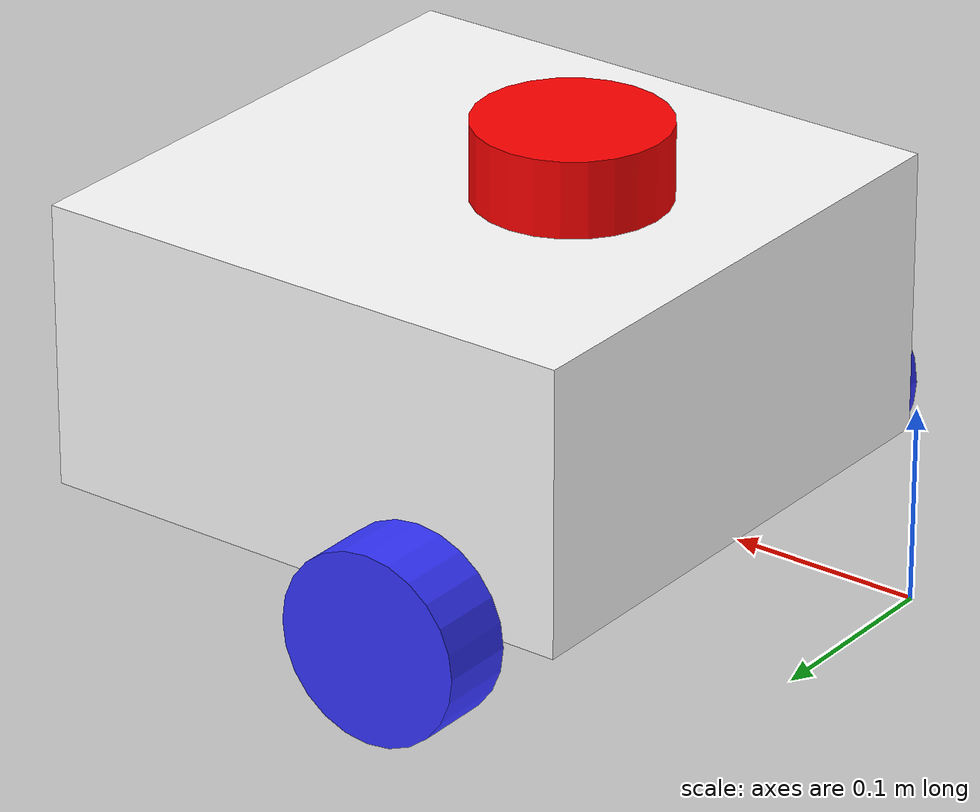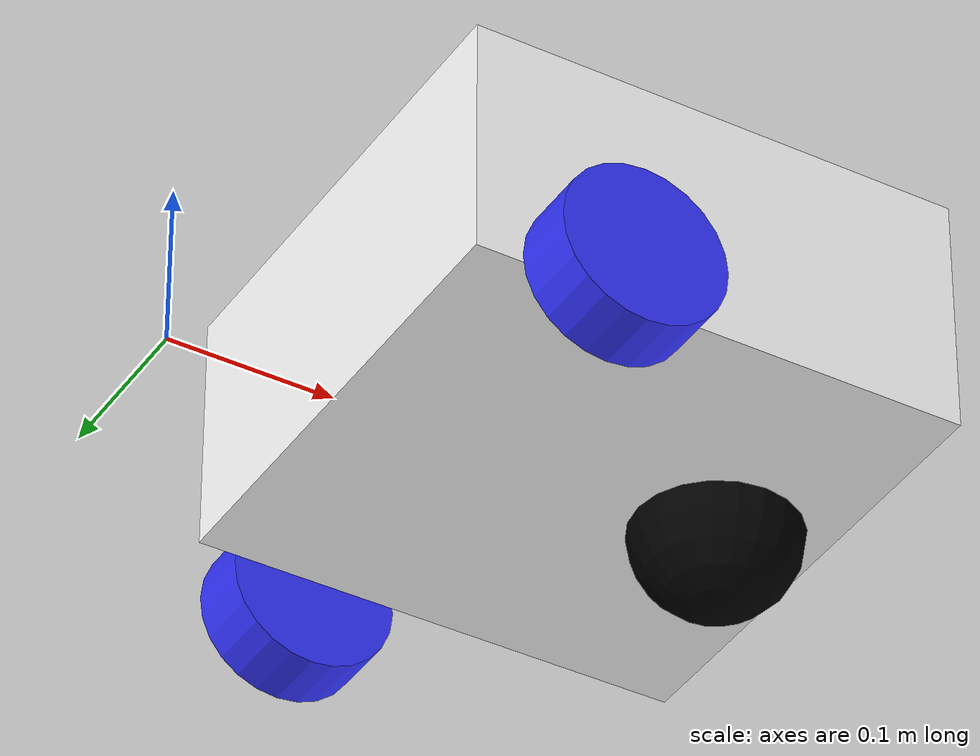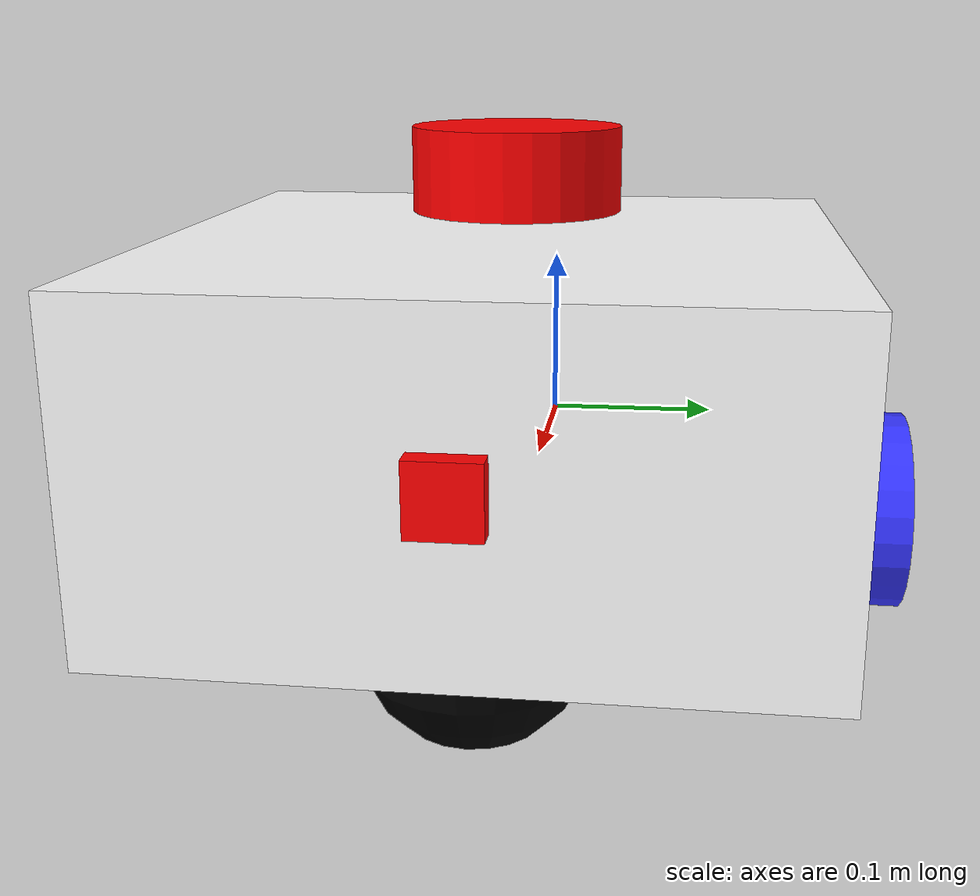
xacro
<?xml version="1.0"?>
<robot xmlns:xacro="http://www.ros.org/wiki/xacro"  name="robot">

    <!-- Example link -->
    <xacro:include filename="robot_core.xacro"/>
    <xacro:include filename="gazebo_control.xacro"/>
    <xacro:include filename="lidar.xacro"/>
    <xacro:include filename="camera.xacro"/>

</robot>

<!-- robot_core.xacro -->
<robot xmlns:xacro="http://www.ros.org/wiki/xacro">

    <xacro:include filename="inertial_macros.xacro"/>

    <material name="white">
        <color rgba="1 1 1 1"/>
    </material>

    <material name="orange">
        <color rgba="1 0.3 0.1 1.0"/>
    </material>

    <material name="blue">
        <color rgba="0.2 0.2 1 1.0"/>
    </material>

    <material name="black">
        <color rgba="0 0 0 1"/>
    </material>

    <material name="red">
        <color rgba="1.0 0.0 0.0 1.0"/>
    </material>

    <!-- BASE LINK -->

    <link name="base_link">
    </link>

    <!-- BASE FOOTPRINT LINK -->

    <link name="base_footprint">
    </link>

    <!-- CHASSIS LINK -->

    <link name="chassis_link">
        <visual>
            <geometry>
                <box size="0.3 0.3 0.15"/>
            </geometry>
            <origin xyz="0.15 0.0 0.075" rpy="0.0 0.0 0.0"/>
            <material name="white"/>
        </visual>
        <collision>
            <geometry>
                <box size="0.3 0.3 0.15"/>
            </geometry>
            <origin xyz="0.15 0.0 0.075" rpy="0.0 0.0 0.0"/>
        </collision>
        <xacro:inertial_box mass="0.5" x="0.3" y="0.3" z="0.15" >
            <origin xyz="0.15 0.0 0.075" rpy="0.0 0.0 0.0"/>
        </xacro:inertial_box>
    </link>

    <gazebo reference = "chassis_link">
        <material>Gazebo/White</material>
    </gazebo>

    <!-- LEFT WHEEL LINK -->

    <link name="left_wheel_link">
        <visual>
            <geometry>
                <cylinder radius="0.05" length="0.04"/>
            </geometry>
            <origin xyz="0.0 0.0 0.0" rpy="0.0 0.0 0.0"/>
            <material name="blue"/>
        </visual>
        <collision>
            <geometry>
                <cylinder radius="0.05" length="0.04"/>
            </geometry>
            <origin xyz="0.0 0.0 0.0" rpy="0.0 0.0 0.0"/>
        </collision>
        <xacro:inertial_cylinder mass="0.1" length="0.04" radius="0.05" >
            <origin xyz="0.0 0.0 0.0" rpy="0.0 0.0 0.0"/>
        </xacro:inertial_cylinder>
    </link>

    <gazebo reference = "left_wheel_link">
        <material>Gazebo/Blue</material>
    </gazebo>

    <!-- RIGHT WHEEL LINK -->

    <link name="right_wheel_link">
        <visual>
            <geometry>
                <cylinder radius="0.05" length="0.04"/>
            </geometry>
            <origin xyz="0.0 0.0 0.0" rpy="0.0 0.0 0.0"/>
            <material name="blue"/>
        </visual>
        <collision>
            <geometry>
                <cylinder radius="0.05" length="0.04"/>
            </geometry>
            <origin xyz="0.0 0.0 0.0" rpy="0.0 0.0 0.0"/>
        </collision>
        <xacro:inertial_cylinder mass="0.1" length="0.04" radius="0.05" >
            <origin xyz="0.0 0.0 0.0" rpy="0.0 0.0 0.0"/>
        </xacro:inertial_cylinder>
    </link>

    <gazebo reference = "right_wheel_link">
        <material>Gazebo/Blue</material>
    </gazebo>

    <!-- CASTOR WHEEL LINK -->

    <link name="castor_wheel_link">
        <visual>
            <geometry>
                <sphere radius="0.05"/>
            </geometry>
            <origin xyz="0.1 0.0 0.0" rpy="0.0 0.0 0.0"/>
            <material name = "black" />
        </visual>
        <collision>
            <geometry>
                <sphere radius="0.05"/>
            </geometry>
            <origin xyz="0.1 0.0 0.0" rpy="0.0 0.0 0.0"/>
        </collision>
        <xacro:inertial_sphere mass="0.1" radius="0.05" >
            <origin xyz="0.0 0.0 0.0" rpy="0.0 0.0 0.0"/>
        </xacro:inertial_sphere>
    </link>

    <gazebo reference = "castor_wheel_link">
        <material>Gazebo/Black</material>
        <mu1 value="0.001" />
        <mu2 value="0.001" />
    </gazebo>

    <!-- BASE FOOTPRINT JOINT -->

    <joint name="base_footprint_joint" type="fixed">
        <parent link="base_link"/>
        <child link="base_footprint"/>
        <origin xyz="0.0 0.0 0.0" rpy="0.0 0.0 0.0"/>
    </joint>

    <!-- BASE CHASSIS JOINT -->

    <joint name="base_chassis_joint" type="fixed">
        <parent link="base_link"/>
        <child link="chassis_link"/>
        <origin xyz="0.1 0.0 0.0" rpy="0.0 0.0 0.0"/>
    </joint>

    <!-- LEFT WHEEL JOINT -->

    <joint name="left_wheel_joint" type="continuous">
        <parent link="chassis_link"/>
        <child link="left_wheel_link"/>
        <origin xyz="0.075 0.175 0" rpy="-1.57 0 0"/>
        <axis xyz="0 0 1"/>
    </joint>

    <!-- RIGHT WHEEL JOINT -->

    <joint name="right_wheel_joint" type="continuous">
        <parent link="chassis_link"/>
        <child link="right_wheel_link"/>
        <origin xyz="0.075 -0.175 0" rpy="-1.57 0 0"/>
        <axis xyz="0 0 1"/>
    </joint>

    <!-- CASTOR WHEEL JOINT -->

    <joint name="castor_wheel_base_joint" type="fixed">
        <parent link="base_link"/>
        <child link="castor_wheel_link"/>
        <origin xyz="0.24 0.0 0.0" rpy="0.0 0.0 0.0"/>
    </joint>

</robot>

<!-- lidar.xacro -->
<robot xmlns:xacro="http://www.ros.org/wiki/xacro" >

    <joint name="laser_joint" type="fixed">
        <parent link="chassis_link"/>
        <child link="laser_frame"/>
        <origin xyz="0.1 0 0.175" rpy="0 0 0"/>
    </joint>

    <link name="laser_frame">
        <visual>
            <geometry>
                <cylinder radius="0.05" length="0.04"/>
            </geometry>
            <material name="red"/>
        </visual>
        <collision>
            <geometry>
                <cylinder radius="0.05" length="0.04"/>
            </geometry>
        </collision>
        <xacro:inertial_cylinder mass="0.1" length="0.04" radius="0.05">
            <origin xyz="0 0 0" rpy="0 0 0"/>
        </xacro:inertial_cylinder>
    </link>

    <gazebo reference="laser_frame">
        <material>Gazebo/Red</material>

        <sensor name="laser" type="ray">
            <pose> 0 0 0 0 0 0 </pose>
            <visualize>true</visualize>
            <update_rate>10</update_rate>
            <ray>
                <scan>
                    <horizontal>
                        <samples>360</samples>
                        <min_angle>-3.14</min_angle>
                        <max_angle>3.14</max_angle>
                    </horizontal>
                </scan>
                <range>
                    <min>0.3</min>
                    <max>12</max>
                </range>
            </ray>
            <plugin name="laser_controller" filename="libgazebo_ros_ray_sensor.so">
                <ros>
                    <argument>~/out:=scan</argument>
                </ros>
                <output_type>sensor_msgs/LaserScan</output_type>
                <frame_name>laser_frame</frame_name>
            </plugin>
        </sensor>
    </gazebo>

</robot>

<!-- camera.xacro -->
<robot xmlns:xacro="http://www.ros.org/wiki/xacro" >

    <link name="camera_link">
        <visual>
            <geometry>
                <box size="0.01 0.03 0.03"/>
            </geometry>
            <material name="red"/>
        </visual>
    </link>

    <link name="camera_link_optical">
    </link>

    <joint name="camera_joint" type="fixed">
        <parent link="chassis_link"/>
        <child link="camera_link"/>
        <origin xyz="0.305 0 0.08" rpy="0 0 0"/>
    </joint>

    <joint name="camera__optical_joint" type="fixed">
        <parent link="camera_link"/>
        <child link="camera_link_optical"/>
        <origin xyz="0 0 0" rpy="${-pi/2} 0 ${-pi/2}"/>
    </joint>

    <gazebo reference="camera_link">
        <material>Gazebo/Red</material>

        <sensor name="camera" type="camera">
            <pose> 0 0 0 0 0 0 </pose>
            <visualize>true</visualize>
            <update_rate>10</update_rate>
            <camera>
                <horizontal_fov>1.098</horizontal_fov>
                <image>
                    <format>R8G8B8</format>
                    <width>640</width>
                    <height>480</height>
                </image>
                <clip>
                    <near>0.05</near>
                    <far>8.0</far>
                </clip>
            </camera>
            <plugin name="camera_controller" filename="libgazebo_ros_camera.so">
                <frame_name>camera_link_optical</frame_name>
            </plugin>
        </sensor>
    </gazebo>

</robot>
